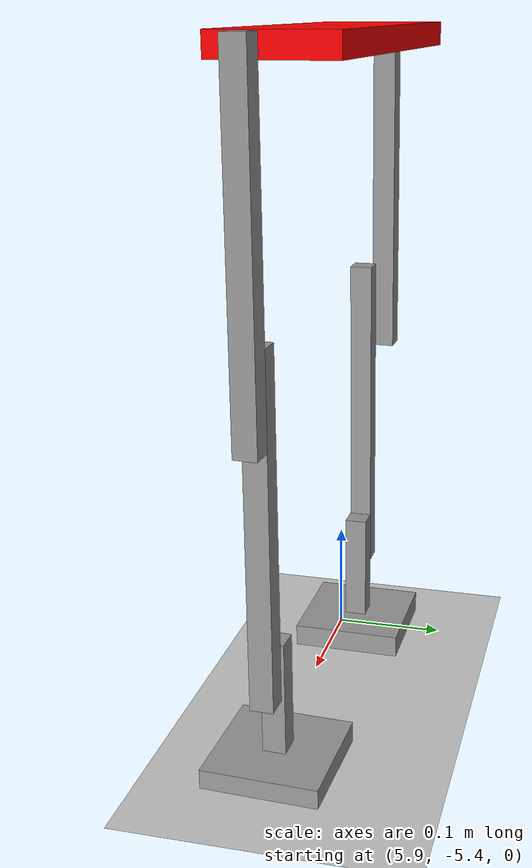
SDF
<sdf version="1.6">
 <world name="default">
  <model name="ground_plane">
   <static>1</static>
   <link name="link">
    <collision name="collision">
     <geometry><plane><normal>0 0 1</normal><size>100 100</size></plane></geometry>
     <surface><friction><ode><mu>100</mu><mu2>50</mu2></ode></friction></surface>
    </collision>
    <visual name="visual">
     <cast_shadows>0</cast_shadows>
     <geometry><plane><normal>0 0 1</normal><size>100 100</size></plane></geometry>
     <material>
      <script><uri>file://media/materials/scripts/gazebo.material</uri><name>Gazebo/Grey</name></script>
     </material>
    </visual>
   </link>
  </model>
  <model name="Humanoid">
   <link name="link_0">
    <pose>0.006667 0 -0.09 0 -0 0</pose>
    <inertial>
     <mass>5</mass>
     <inertia>
      <ixx>0.166667</ixx>
      <ixy>0</ixy>
      <ixz>0</ixz>
      <iyy>0.166667</iyy>
      <iyz>0</iyz>
      <izz>0.166667</izz>
     </inertia>
    </inertial>
    <visual name="visual">
     <geometry><box><size>0.1 0.1 0.02</size></box></geometry>
     <material>
      <lighting>1</lighting>
      <script><uri>file://media/materials/scripts/gazebo.material</uri><name>Gazebo/Grey</name></script>
      <ambient>0.3 0.3 0.3 1</ambient>
      <diffuse>0.7 0.7 0.7 1</diffuse>
      <specular>0.01 0.01 0.01 1</specular>
      <emissive>0 0 0 1</emissive>
      <shader type="vertex"><normal_map>__default__</normal_map></shader>
     </material>
    </visual>
    <collision name="collision">
     <geometry><box><size>0.1 0.1 0.02</size></box></geometry>
     <surface>
      <friction>
       <ode><mu>1</mu><mu2>1</mu2><fdir1>0 0 0</fdir1><slip1>0</slip1><slip2>0</slip2></ode>
       <torsional>
        <coefficient>1</coefficient>
        <patch_radius>0</patch_radius>
        <surface_radius>0</surface_radius>
        <use_patch_radius>1</use_patch_radius>
        <ode><slip>0</slip></ode>
       </torsional>
      </friction>
      <bounce><restitution_coefficient>0</restitution_coefficient><threshold>1e+06</threshold></bounce>
      <contact>
       <collide_without_contact>0</collide_without_contact>
       <collide_without_contact_bitmask>1</collide_without_contact_bitmask>
       <collide_bitmask>1</collide_bitmask>
       <ode>
        <soft_cfm>0</soft_cfm>
        <soft_erp>0.2</soft_erp>
        <kp>1e+13</kp>
        <kd>1</kd>
        <max_vel>0.01</max_vel>
        <min_depth>0</min_depth>
       </ode>
       <bullet>
        <split_impulse>1</split_impulse>
        <split_impulse_penetration_threshold>-0.01</split_impulse_penetration_threshold>
        <soft_cfm>0</soft_cfm>
        <soft_erp>0.2</soft_erp>
        <kp>1e+13</kp>
        <kd>1</kd>
       </bullet>
      </contact>
     </surface>
    </collision>
   </link>
   <link name="link_0_clone">
    <pose>0.256667 -0.006866 -0.09105 -0.000217 0.006468 -0.033563</pose>
    <inertial>
     <mass>5</mass>
     <inertia>
      <ixx>0.166667</ixx>
      <ixy>0</ixy>
      <ixz>0</ixz>
      <iyy>0.166667</iyy>
      <iyz>0</iyz>
      <izz>0.166667</izz>
     </inertia>
    </inertial>
    <visual name="visual">
     <geometry><box><size>0.1 0.1 0.02</size></box></geometry>
     <material>
      <lighting>1</lighting>
      <script><uri>file://media/materials/scripts/gazebo.material</uri><name>Gazebo/Grey</name></script>
      <ambient>0.3 0.3 0.3 1</ambient>
      <diffuse>0.7 0.7 0.7 1</diffuse>
      <specular>0.01 0.01 0.01 1</specular>
      <emissive>0 0 0 1</emissive>
      <shader type="vertex"><normal_map>__default__</normal_map></shader>
     </material>
    </visual>
    <collision name="collision">
     <geometry><box><size>0.1 0.1 0.02</size></box></geometry>
     <surface>
      <friction>
       <ode><mu>1</mu><mu2>1</mu2><fdir1>0 0 0</fdir1><slip1>0</slip1><slip2>0</slip2></ode>
       <torsional>
        <coefficient>1</coefficient>
        <patch_radius>0</patch_radius>
        <surface_radius>0</surface_radius>
        <use_patch_radius>1</use_patch_radius>
        <ode><slip>0</slip></ode>
       </torsional>
      </friction>
      <bounce><restitution_coefficient>0</restitution_coefficient><threshold>1e+06</threshold></bounce>
      <contact>
       <collide_without_contact>0</collide_without_contact>
       <collide_without_contact_bitmask>1</collide_without_contact_bitmask>
       <collide_bitmask>1</collide_bitmask>
       <ode>
        <soft_cfm>0</soft_cfm>
        <soft_erp>0.2</soft_erp>
        <kp>1e+13</kp>
        <kd>1</kd>
        <max_vel>0.01</max_vel>
        <min_depth>0</min_depth>
       </ode>
       <bullet>
        <split_impulse>1</split_impulse>
        <split_impulse_penetration_threshold>-0.01</split_impulse_penetration_threshold>
        <soft_cfm>0</soft_cfm>
        <soft_erp>0.2</soft_erp>
        <kp>1e+13</kp>
        <kd>1</kd>
       </bullet>
      </contact>
     </surface>
    </collision>
   </link>
   <link name="link_1">
    <pose>0.006667 0 -0.03 0 -0 0</pose>
    <inertial>
     <mass>1</mass>
     <inertia>
      <ixx>0.166667</ixx>
      <ixy>0</ixy>
      <ixz>0</ixz>
      <iyy>0.166667</iyy>
      <iyz>0</iyz>
      <izz>0.166667</izz>
     </inertia>
    </inertial>
    <visual name="visual">
     <geometry><box><size>0.02 0.02 0.1</size></box></geometry>
     <material>
      <lighting>1</lighting>
      <script><uri>file://media/materials/scripts/gazebo.material</uri><name>Gazebo/Grey</name></script>
      <ambient>0.3 0.3 0.3 1</ambient>
      <diffuse>0.7 0.7 0.7 1</diffuse>
      <specular>0.01 0.01 0.01 1</specular>
      <emissive>0 0 0 1</emissive>
      <shader type="vertex"><normal_map>__default__</normal_map></shader>
     </material>
    </visual>
    <collision name="collision">
     <geometry><box><size>0.02 0.02 0.1</size></box></geometry>
     <surface>
      <friction>
       <ode><mu>1</mu><mu2>1</mu2><fdir1>0 0 0</fdir1><slip1>0</slip1><slip2>0</slip2></ode>
       <torsional>
        <coefficient>1</coefficient>
        <patch_radius>0</patch_radius>
        <surface_radius>0</surface_radius>
        <use_patch_radius>1</use_patch_radius>
        <ode><slip>0</slip></ode>
       </torsional>
      </friction>
      <bounce><restitution_coefficient>0</restitution_coefficient><threshold>1e+06</threshold></bounce>
      <contact>
       <collide_without_contact>0</collide_without_contact>
       <collide_without_contact_bitmask>1</collide_without_contact_bitmask>
       <collide_bitmask>1</collide_bitmask>
       <ode>
        <soft_cfm>0</soft_cfm>
        <soft_erp>0.2</soft_erp>
        <kp>1e+13</kp>
        <kd>1</kd>
        <max_vel>0.01</max_vel>
        <min_depth>0</min_depth>
       </ode>
       <bullet>
        <split_impulse>1</split_impulse>
        <split_impulse_penetration_threshold>-0.01</split_impulse_penetration_threshold>
        <soft_cfm>0</soft_cfm>
        <soft_erp>0.2</soft_erp>
        <kp>1e+13</kp>
        <kd>1</kd>
       </bullet>
      </contact>
     </surface>
    </collision>
   </link>
   <link name="link_1_clone">
    <pose>-0.013333 0 0.12 0 -0 0</pose>
    <inertial>
     <mass>1</mass>
     <inertia>
      <ixx>0.166667</ixx>
      <ixy>0</ixy>
      <ixz>0</ixz>
      <iyy>0.166667</iyy>
      <iyz>0</iyz>
      <izz>0.166667</izz>
     </inertia>
    </inertial>
    <visual name="visual">
     <geometry><box><size>0.02 0.02 0.3</size></box></geometry>
     <material>
      <lighting>1</lighting>
      <script><uri>file://media/materials/scripts/gazebo.material</uri><name>Gazebo/Grey</name></script>
      <ambient>0.3 0.3 0.3 1</ambient>
      <diffuse>0.7 0.7 0.7 1</diffuse>
      <specular>0.01 0.01 0.01 1</specular>
      <emissive>0 0 0 1</emissive>
      <shader type="vertex"><normal_map>__default__</normal_map></shader>
     </material>
    </visual>
    <collision name="collision">
     <geometry><box><size>0.02 0.02 0.3</size></box></geometry>
     <surface>
      <friction>
       <ode><mu>1</mu><mu2>1</mu2><fdir1>0 0 0</fdir1><slip1>0</slip1><slip2>0</slip2></ode>
       <torsional>
        <coefficient>1</coefficient>
        <patch_radius>0</patch_radius>
        <surface_radius>0</surface_radius>
        <use_patch_radius>1</use_patch_radius>
        <ode><slip>0</slip></ode>
       </torsional>
      </friction>
      <bounce><restitution_coefficient>0</restitution_coefficient><threshold>1e+06</threshold></bounce>
      <contact>
       <collide_without_contact>0</collide_without_contact>
       <collide_without_contact_bitmask>1</collide_without_contact_bitmask>
       <collide_bitmask>1</collide_bitmask>
       <ode>
        <soft_cfm>0</soft_cfm>
        <soft_erp>0.2</soft_erp>
        <kp>1e+13</kp>
        <kd>1</kd>
        <max_vel>0.01</max_vel>
        <min_depth>0</min_depth>
       </ode>
       <bullet>
        <split_impulse>1</split_impulse>
        <split_impulse_penetration_threshold>-0.01</split_impulse_penetration_threshold>
        <soft_cfm>0</soft_cfm>
        <soft_erp>0.2</soft_erp>
        <kp>1e+13</kp>
        <kd>1</kd>
       </bullet>
      </contact>
     </surface>
    </collision>
   </link>
   <link name="link_1_clone_0">
    <pose>0.257051 -0.006866 -0.031684 -0.000217 0.006468 -0.033563</pose>
    <inertial>
     <mass>1</mass>
     <inertia>
      <ixx>0.166667</ixx>
      <ixy>0</ixy>
      <ixz>0</ixz>
      <iyy>0.166667</iyy>
      <iyz>0</iyz>
      <izz>0.166667</izz>
     </inertia>
    </inertial>
    <visual name="visual">
     <geometry><box><size>0.02 0.02 0.1</size></box></geometry>
     <material>
      <lighting>1</lighting>
      <script><uri>file://media/materials/scripts/gazebo.material</uri><name>Gazebo/Grey</name></script>
      <ambient>0.3 0.3 0.3 1</ambient>
      <diffuse>0.7 0.7 0.7 1</diffuse>
      <specular>0.01 0.01 0.01 1</specular>
      <emissive>0 0 0 1</emissive>
      <shader type="vertex"><normal_map>__default__</normal_map></shader>
     </material>
    </visual>
    <collision name="collision">
     <geometry><box><size>0.02 0.02 0.1</size></box></geometry>
     <surface>
      <friction>
       <ode><mu>1</mu><mu2>1</mu2><fdir1>0 0 0</fdir1><slip1>0</slip1><slip2>0</slip2></ode>
       <torsional>
        <coefficient>1</coefficient>
        <patch_radius>0</patch_radius>
        <surface_radius>0</surface_radius>
        <use_patch_radius>1</use_patch_radius>
        <ode><slip>0</slip></ode>
       </torsional>
      </friction>
      <bounce><restitution_coefficient>0</restitution_coefficient><threshold>1e+06</threshold></bounce>
      <contact>
       <collide_without_contact>0</collide_without_contact>
       <collide_without_contact_bitmask>1</collide_without_contact_bitmask>
       <collide_bitmask>1</collide_bitmask>
       <ode>
        <soft_cfm>0</soft_cfm>
        <soft_erp>0.2</soft_erp>
        <kp>1e+13</kp>
        <kd>1</kd>
        <max_vel>0.01</max_vel>
        <min_depth>0</min_depth>
       </ode>
       <bullet>
        <split_impulse>1</split_impulse>
        <split_impulse_penetration_threshold>-0.01</split_impulse_penetration_threshold>
        <soft_cfm>0</soft_cfm>
        <soft_erp>0.2</soft_erp>
        <kp>1e+13</kp>
        <kd>1</kd>
       </bullet>
      </contact>
     </surface>
    </collision>
   </link>
   <link name="link_1_clone_clone">
    <pose>-0.03389 0.016897 0.340001 0 5e-06 -0.021945</pose>
    <inertial>
     <mass>1</mass>
     <inertia>
      <ixx>0.166667</ixx>
      <ixy>0</ixy>
      <ixz>0</ixz>
      <iyy>0.166667</iyy>
      <iyz>0</iyz>
      <izz>0.166667</izz>
     </inertia>
    </inertial>
    <visual name="visual">
     <geometry><box><size>0.02 0.02 0.3</size></box></geometry>
     <material>
      <lighting>1</lighting>
      <script><uri>file://media/materials/scripts/gazebo.material</uri><name>Gazebo/Grey</name></script>
      <ambient>0.3 0.3 0.3 1</ambient>
      <diffuse>0.7 0.7 0.7 1</diffuse>
      <specular>0.01 0.01 0.01 1</specular>
      <emissive>0 0 0 1</emissive>
      <shader type="vertex"><normal_map>__default__</normal_map></shader>
     </material>
    </visual>
    <collision name="collision">
     <geometry><box><size>0.02 0.02 0.3</size></box></geometry>
     <surface>
      <friction>
       <ode><mu>1</mu><mu2>1</mu2><fdir1>0 0 0</fdir1><slip1>0</slip1><slip2>0</slip2></ode>
       <torsional>
        <coefficient>1</coefficient>
        <patch_radius>0</patch_radius>
        <surface_radius>0</surface_radius>
        <use_patch_radius>1</use_patch_radius>
        <ode><slip>0</slip></ode>
       </torsional>
      </friction>
      <bounce><restitution_coefficient>0</restitution_coefficient><threshold>1e+06</threshold></bounce>
      <contact>
       <collide_without_contact>0</collide_without_contact>
       <collide_without_contact_bitmask>1</collide_without_contact_bitmask>
       <collide_bitmask>1</collide_bitmask>
       <ode>
        <soft_cfm>0</soft_cfm>
        <soft_erp>0.2</soft_erp>
        <kp>1e+13</kp>
        <kd>1</kd>
        <max_vel>0.01</max_vel>
        <min_depth>0</min_depth>
       </ode>
       <bullet>
        <split_impulse>1</split_impulse>
        <split_impulse_penetration_threshold>-0.01</split_impulse_penetration_threshold>
        <soft_cfm>0</soft_cfm>
        <soft_erp>0.2</soft_erp>
        <kp>1e+13</kp>
        <kd>1</kd>
       </bullet>
      </contact>
     </surface>
    </collision>
   </link>
   <link name="link_1_clone_clone_0">
    <pose>0.277922 -0.010142 0.118054 -0.000217 0.006468 -0.033563</pose>
    <inertial>
     <mass>1</mass>
     <inertia>
      <ixx>0.166667</ixx>
      <ixy>0</ixy>
      <ixz>0</ixz>
      <iyy>0.166667</iyy>
      <iyz>0</iyz>
      <izz>0.166667</izz>
     </inertia>
    </inertial>
    <visual name="visual">
     <geometry><box><size>0.02 0.02 0.3</size></box></geometry>
     <material>
      <lighting>1</lighting>
      <script><uri>file://media/materials/scripts/gazebo.material</uri><name>Gazebo/Grey</name></script>
      <ambient>0.3 0.3 0.3 1</ambient>
      <diffuse>0.7 0.7 0.7 1</diffuse>
      <specular>0.01 0.01 0.01 1</specular>
      <emissive>0 0 0 1</emissive>
      <shader type="vertex"><normal_map>__default__</normal_map></shader>
     </material>
    </visual>
    <collision name="collision">
     <geometry><box><size>0.02 0.02 0.3</size></box></geometry>
     <surface>
      <friction>
       <ode><mu>1</mu><mu2>1</mu2><fdir1>0 0 0</fdir1><slip1>0</slip1><slip2>0</slip2></ode>
       <torsional>
        <coefficient>1</coefficient>
        <patch_radius>0</patch_radius>
        <surface_radius>0</surface_radius>
        <use_patch_radius>1</use_patch_radius>
        <ode><slip>0</slip></ode>
       </torsional>
      </friction>
      <bounce><restitution_coefficient>0</restitution_coefficient><threshold>1e+06</threshold></bounce>
      <contact>
       <collide_without_contact>0</collide_without_contact>
       <collide_without_contact_bitmask>1</collide_without_contact_bitmask>
       <collide_bitmask>1</collide_bitmask>
       <ode>
        <soft_cfm>0</soft_cfm>
        <soft_erp>0.2</soft_erp>
        <kp>1e+13</kp>
        <kd>1</kd>
        <max_vel>0.01</max_vel>
        <min_depth>0</min_depth>
       </ode>
       <bullet>
        <split_impulse>1</split_impulse>
        <split_impulse_penetration_threshold>-0.01</split_impulse_penetration_threshold>
        <soft_cfm>0</soft_cfm>
        <soft_erp>0.2</soft_erp>
        <kp>1e+13</kp>
        <kd>1</kd>
       </bullet>
      </contact>
     </surface>
    </collision>
   </link>
   <link name="link_1_clone_clone_clone">
    <pose>0.29956 -0.010603 0.338069 -0.000359 0.006466 -0.055508</pose>
    <inertial>
     <mass>1</mass>
     <inertia>
      <ixx>0.166667</ixx>
      <ixy>0</ixy>
      <ixz>0</ixz>
      <iyy>0.166667</iyy>
      <iyz>0</iyz>
      <izz>0.166667</izz>
     </inertia>
    </inertial>
    <visual name="visual">
     <geometry><box><size>0.02 0.02 0.3</size></box></geometry>
     <material>
      <lighting>1</lighting>
      <script><uri>file://media/materials/scripts/gazebo.material</uri><name>Gazebo/Grey</name></script>
      <ambient>0.3 0.3 0.3 1</ambient>
      <diffuse>0.7 0.7 0.7 1</diffuse>
      <specular>0.01 0.01 0.01 1</specular>
      <emissive>0 0 0 1</emissive>
      <shader type="vertex"><normal_map>__default__</normal_map></shader>
     </material>
    </visual>
    <collision name="collision">
     <geometry><box><size>0.02 0.02 0.3</size></box></geometry>
     <surface>
      <friction>
       <ode><mu>1</mu><mu2>1</mu2><fdir1>0 0 0</fdir1><slip1>0</slip1><slip2>0</slip2></ode>
       <torsional>
        <coefficient>1</coefficient>
        <patch_radius>0</patch_radius>
        <surface_radius>0</surface_radius>
        <use_patch_radius>1</use_patch_radius>
        <ode><slip>0</slip></ode>
       </torsional>
      </friction>
      <bounce><restitution_coefficient>0</restitution_coefficient><threshold>1e+06</threshold></bounce>
      <contact>
       <collide_without_contact>0</collide_without_contact>
       <collide_without_contact_bitmask>1</collide_without_contact_bitmask>
       <collide_bitmask>1</collide_bitmask>
       <ode>
        <soft_cfm>0</soft_cfm>
        <soft_erp>0.2</soft_erp>
        <kp>1e+13</kp>
        <kd>1</kd>
        <max_vel>0.01</max_vel>
        <min_depth>0</min_depth>
       </ode>
       <bullet>
        <split_impulse>1</split_impulse>
        <split_impulse_penetration_threshold>-0.01</split_impulse_penetration_threshold>
        <soft_cfm>0</soft_cfm>
        <soft_erp>0.2</soft_erp>
        <kp>1e+13</kp>
        <kd>1</kd>
       </bullet>
      </contact>
     </surface>
    </collision>
   </link>
   <link name="link_3">
    <pose>0.13353 0.013252 0.480016 -0.000217 0.006468 -0.033563</pose>
    <inertial>
     <mass>1</mass>
     <inertia>
      <ixx>0.166667</ixx>
      <ixy>0</ixy>
      <ixz>0</ixz>
      <iyy>0.166667</iyy>
      <iyz>0</iyz>
      <izz>0.166667</izz>
     </inertia>
    </inertial>
    <visual name="visual">
     <geometry><box><size>0.31 0.1 0.02</size></box></geometry>
     <material>
      <lighting>1</lighting>
      <script><uri>file://media/materials/scripts/gazebo.material</uri><name>Gazebo/Grey</name></script>
      <ambient>1 0 0 1</ambient>
      <diffuse>0.7 0.7 0.7 1</diffuse>
      <specular>0.01 0.01 0.01 1</specular>
      <emissive>0 0 0 1</emissive>
      <shader type="vertex"><normal_map>__default__</normal_map></shader>
     </material>
    </visual>
    <collision name="collision">
     <geometry><box><size>0.31 0.1 0.02</size></box></geometry>
     <surface>
      <friction>
       <ode><mu>1</mu><mu2>1</mu2><fdir1>0 0 0</fdir1><slip1>0</slip1><slip2>0</slip2></ode>
       <torsional>
        <coefficient>1</coefficient>
        <patch_radius>0</patch_radius>
        <surface_radius>0</surface_radius>
        <use_patch_radius>1</use_patch_radius>
        <ode><slip>0</slip></ode>
       </torsional>
      </friction>
      <bounce><restitution_coefficient>0</restitution_coefficient><threshold>1e+06</threshold></bounce>
      <contact>
       <collide_without_contact>0</collide_without_contact>
       <collide_without_contact_bitmask>1</collide_without_contact_bitmask>
       <collide_bitmask>1</collide_bitmask>
       <ode>
        <soft_cfm>0</soft_cfm>
        <soft_erp>0.2</soft_erp>
        <kp>1e+13</kp>
        <kd>1</kd>
        <max_vel>0.01</max_vel>
        <min_depth>0</min_depth>
       </ode>
       <bullet>
        <split_impulse>1</split_impulse>
        <split_impulse_penetration_threshold>-0.01</split_impulse_penetration_threshold>
        <soft_cfm>0</soft_cfm>
        <soft_erp>0.2</soft_erp>
        <kp>1e+13</kp>
        <kd>1</kd>
       </bullet>
      </contact>
     </surface>
    </collision>
   </link>
   <joint name="link_0_JOINT_0" type="fixed">
    <parent>link_0</parent>
    <child>link_1</child>
    <pose>0 0 -0.05 0 -0 0</pose>
    <physics>
     <ode><limit><cfm>0</cfm><erp>0.2</erp></limit><suspension><cfm>0</cfm><erp>0.2</erp></suspension></ode>
    </physics>
   </joint>
   <joint name="link_0_clone_JOINT_9" type="fixed">
    <parent>link_0_clone</parent>
    <child>link_1_clone_0</child>
    <pose>0 0 -0.05 0 -0 0</pose>
    <physics>
     <ode><limit><cfm>0</cfm><erp>0.2</erp></limit><suspension><cfm>0</cfm><erp>0.2</erp></suspension></ode>
    </physics>
   </joint>
   <joint name="link_1_JOINT_1" type="revolute">
    <parent>link_1</parent>
    <child>link_1_clone</child>
    <pose>0 0 -0.12 0 -0 0</pose>
    <axis>
     <xyz>1 0 0</xyz>
     <use_parent_model_frame>0</use_parent_model_frame>
     <limit><lower>0</lower><upper>0</upper><effort>-1</effort><velocity>-1</velocity></limit>
     <dynamics>
      <spring_reference>0</spring_reference>
      <spring_stiffness>0</spring_stiffness>
      <damping>0</damping>
      <friction>0</friction>
     </dynamics>
    </axis>
    <physics>
     <ode><limit><cfm>0</cfm><erp>0.2</erp></limit><suspension><cfm>0</cfm><erp>0.2</erp></suspension></ode>
    </physics>
   </joint>
   <joint name="link_1_clone_0_JOINT_12" type="revolute">
    <parent>link_1_clone_0</parent>
    <child>link_1_clone_clone_0</child>
    <pose>0 0 -0.12 0 -0 0</pose>
    <axis>
     <xyz>1 0 0</xyz>
     <use_parent_model_frame>0</use_parent_model_frame>
     <limit><lower>0</lower><upper>0</upper><effort>-1</effort><velocity>-1</velocity></limit>
     <dynamics>
      <spring_reference>0</spring_reference>
      <spring_stiffness>0</spring_stiffness>
      <damping>0</damping>
      <friction>0</friction>
     </dynamics>
    </axis>
    <physics>
     <ode><limit><cfm>0</cfm><erp>0.2</erp></limit><suspension><cfm>0</cfm><erp>0.2</erp></suspension></ode>
    </physics>
   </joint>
   <joint name="link_1_clone_JOINT_2" type="revolute">
    <parent>link_1_clone</parent>
    <child>link_1_clone_clone</child>
    <pose>0 0 -0.12 0 -0 0</pose>
    <axis>
     <xyz>1 0 0</xyz>
     <use_parent_model_frame>0</use_parent_model_frame>
     <limit><lower>-0.524</lower><upper>0.524</upper><effort>-1</effort><velocity>-1</velocity></limit>
     <dynamics>
      <spring_reference>0</spring_reference>
      <spring_stiffness>0</spring_stiffness>
      <damping>0</damping>
      <friction>0</friction>
     </dynamics>
    </axis>
    <physics>
     <ode><limit><cfm>0</cfm><erp>0.2</erp></limit><suspension><cfm>0</cfm><erp>0.2</erp></suspension></ode>
    </physics>
   </joint>
   <joint name="link_1_clone_clone_0_JOINT_13" type="revolute">
    <parent>link_1_clone_clone_0</parent>
    <child>link_1_clone_clone_clone</child>
    <pose>0 0 -0.12 0 -0 0</pose>
    <axis>
     <xyz>1 0 0</xyz>
     <use_parent_model_frame>0</use_parent_model_frame>
     <limit><lower>-0.524</lower><upper>0.524</upper><effort>-1</effort><velocity>-1</velocity></limit>
     <dynamics>
      <spring_reference>0</spring_reference>
      <spring_stiffness>0</spring_stiffness>
      <damping>0</damping>
      <friction>0</friction>
     </dynamics>
    </axis>
    <physics>
     <ode><limit><cfm>0</cfm><erp>0.2</erp></limit><suspension><cfm>0</cfm><erp>0.2</erp></suspension></ode>
    </physics>
   </joint>
   <joint name="link_1_clone_clone_JOINT_15" type="revolute">
    <parent>link_1_clone_clone</parent>
    <child>link_3</child>
    <pose>-0.15 0 0 0 -0 0</pose>
    <axis>
     <xyz>1 0 0</xyz>
     <use_parent_model_frame>0</use_parent_model_frame>
     <limit><lower>-0.524</lower><upper>0.524</upper><effort>-1</effort><velocity>-1</velocity></limit>
     <dynamics>
      <spring_reference>0</spring_reference>
      <spring_stiffness>0</spring_stiffness>
      <damping>0</damping>
      <friction>0</friction>
     </dynamics>
    </axis>
    <physics>
     <ode><limit><cfm>0</cfm><erp>0.2</erp></limit><suspension><cfm>0</cfm><erp>0.2</erp></suspension></ode>
    </physics>
   </joint>
   <joint name="link_1_clone_clone_clone_JOINT_17" type="revolute">
    <parent>link_1_clone_clone_clone</parent>
    <child>link_3</child>
    <pose>0.15 0 0 0 -0 0</pose>
    <axis>
     <xyz>1 0 0</xyz>
     <use_parent_model_frame>0</use_parent_model_frame>
     <limit><lower>-0.524</lower><upper>0.524</upper><effort>-1</effort><velocity>-1</velocity></limit>
     <dynamics>
      <spring_reference>0</spring_reference>
      <spring_stiffness>0</spring_stiffness>
      <damping>0</damping>
      <friction>0</friction>
     </dynamics>
    </axis>
    <physics>
     <ode><limit><cfm>0</cfm><erp>0.2</erp></limit><suspension><cfm>0</cfm><erp>0.2</erp></suspension></ode>
    </physics>
   </joint>
   <static>0</static>
   <pose>5.90538 -5.37997 0.10058 -1e-05 0.010321 -0.010053</pose>
  </model>
 </world>
</sdf>
